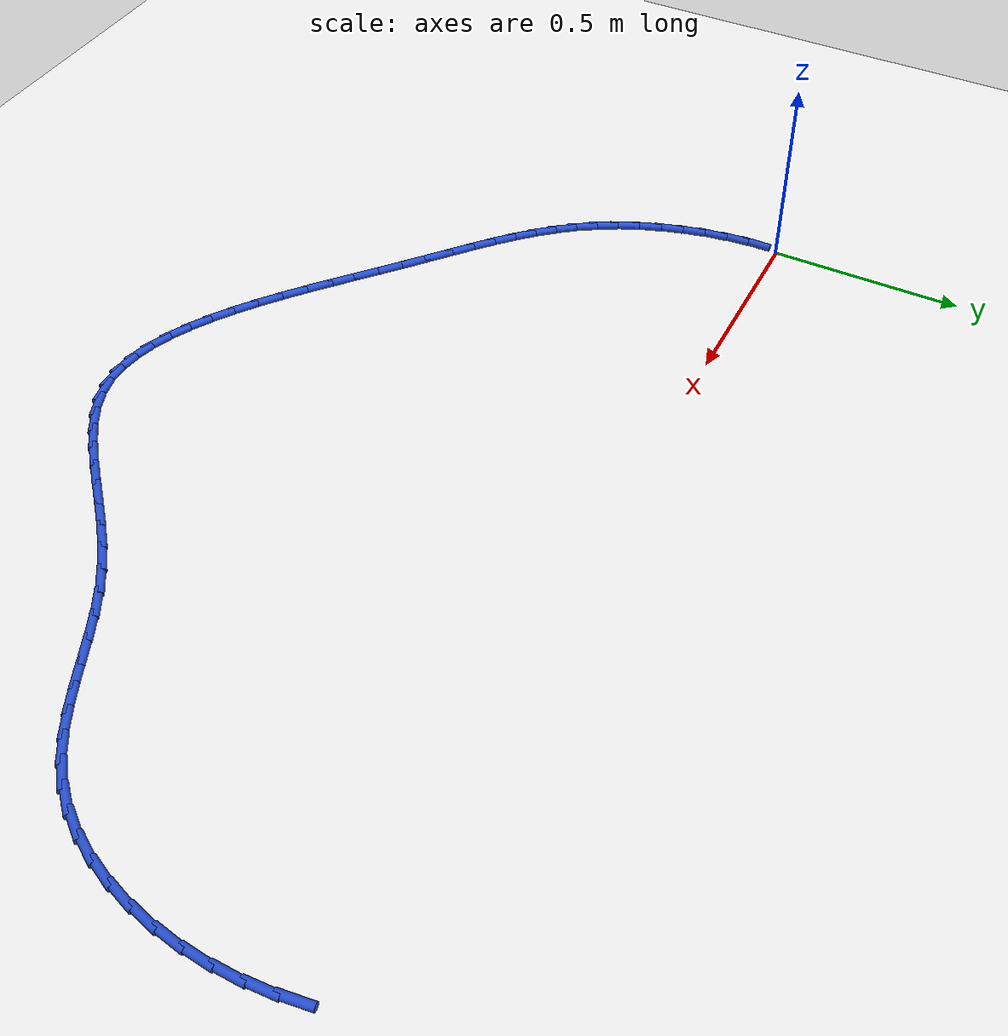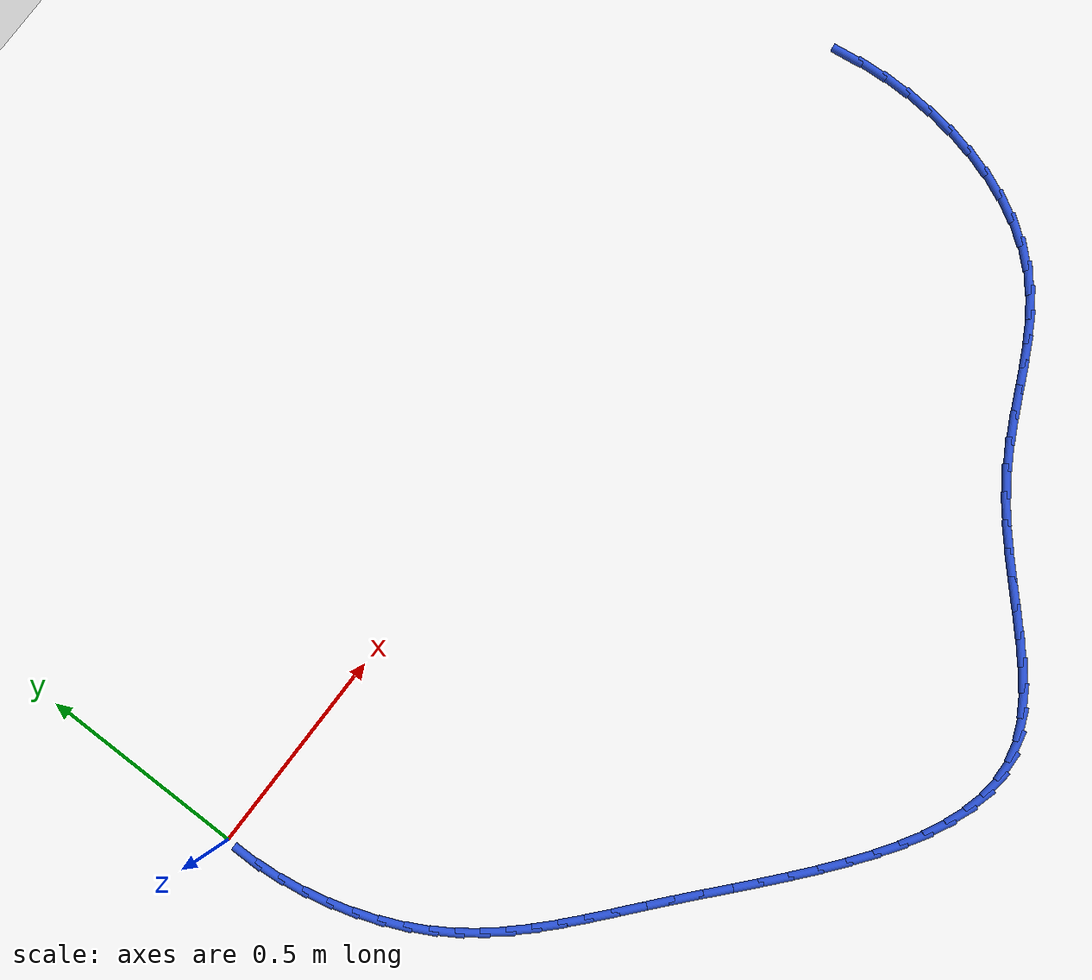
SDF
<sdf version="1.6">
 <world name="default">
  <model name="ground_plane">
   <static>1</static>
   <link name="link">
    <collision name="collision">
     <geometry><plane><normal>0 0 1</normal><size>100 100</size></plane></geometry>
     <surface><friction><ode><mu>100</mu><mu2>50</mu2></ode></friction></surface>
    </collision>
    <visual name="visual">
     <cast_shadows>0</cast_shadows>
     <geometry><plane><normal>0 0 1</normal><size>100 100</size></plane></geometry>
     <material>
      <script><uri>file://media/materials/scripts/gazebo.material</uri><name>Gazebo/WhiteGlow</name></script>
     </material>
    </visual>
   </link>
  </model>
  <model name="line">
   <link name="link_59">
    <pose>2.3085530691798746 -0.018197853099066557 0.01 0 1.57 -1.4325129582459295</pose>
    <collision name="collision">
     <geometry><cylinder><radius>0.01</radius><length>0.08</length></cylinder></geometry>
    </collision>
    <visual name="visual">
     <material>
      <script><name>Gazebo/Blue</name><uri>file://media/materials/scripts/gazebo.material</uri></script>
     </material>
     <geometry><cylinder><radius>0.01</radius><length>0.08</length></cylinder></geometry>
    </visual>
   </link>
   <link name="link_60">
    <pose>2.31756860821681 -0.08297787560808702 0.01 0 1.57 -1.5082387716069459</pose>
    <collision name="collision">
     <geometry><cylinder><radius>0.01</radius><length>0.08</length></cylinder></geometry>
    </collision>
    <visual name="visual">
     <material>
      <script><name>Gazebo/Blue</name><uri>file://media/materials/scripts/gazebo.material</uri></script>
     </material>
     <geometry><cylinder><radius>0.01</radius><length>0.08</length></cylinder></geometry>
    </visual>
   </link>
   <link name="link_61">
    <pose>2.32169380316041 -0.14883422632140297 0.01 0 1.57 1.559388871739443</pose>
    <collision name="collision">
     <geometry><cylinder><radius>0.01</radius><length>0.08</length></cylinder></geometry>
    </collision>
    <visual name="visual">
     <material>
      <script><name>Gazebo/Blue</name><uri>file://media/materials/scripts/gazebo.material</uri></script>
     </material>
     <geometry><cylinder><radius>0.01</radius><length>0.08</length></cylinder></geometry>
    </visual>
   </link>
   <link name="link_62">
    <pose>2.320938676465554 -0.21502724974461843 0.01 0 1.57 1.4854980649897156</pose>
    <collision name="collision">
     <geometry><cylinder><radius>0.01</radius><length>0.08</length></cylinder></geometry>
    </collision>
    <visual name="visual">
     <material>
      <script><name>Gazebo/Blue</name><uri>file://media/materials/scripts/gazebo.material</uri></script>
     </material>
     <geometry><cylinder><radius>0.01</radius><length>0.08</length></cylinder></geometry>
    </visual>
   </link>
   <link name="link_63">
    <pose>2.3153132505871246 -0.2808172903833375 0.01 0 1.57 1.4099983165330312</pose>
    <collision name="collision">
     <geometry><cylinder><radius>0.01</radius><length>0.08</length></cylinder></geometry>
    </collision>
    <visual name="visual">
     <material>
      <script><name>Gazebo/Blue</name><uri>file://media/materials/scripts/gazebo.material</uri></script>
     </material>
     <geometry><cylinder><radius>0.01</radius><length>0.08</length></cylinder></geometry>
    </visual>
   </link>
   <link name="link_64">
    <pose>2.3048275479800036 -0.345464692743162 0.01 0 1.57 1.3311528244453497</pose>
    <collision name="collision">
     <geometry><cylinder><radius>0.01</radius><length>0.08</length></cylinder></geometry>
    </collision>
    <visual name="visual">
     <material>
      <script><name>Gazebo/Blue</name><uri>file://media/materials/scripts/gazebo.material</uri></script>
     </material>
     <geometry><cylinder><radius>0.01</radius><length>0.08</length></cylinder></geometry>
    </visual>
   </link>
   <link name="link_65">
    <pose>2.2894915910990714 -0.4082298013296962 0.01 0 1.57 1.247124558940154</pose>
    <collision name="collision">
     <geometry><cylinder><radius>0.01</radius><length>0.08</length></cylinder></geometry>
    </collision>
    <visual name="visual">
     <material>
      <script><name>Gazebo/Blue</name><uri>file://media/materials/scripts/gazebo.material</uri></script>
     </material>
     <geometry><cylinder><radius>0.01</radius><length>0.08</length></cylinder></geometry>
    </visual>
   </link>
   <link name="link_66">
    <pose>2.2693154023992093 -0.4683729606485444 0.01 0 1.57 1.1559573098858067</pose>
    <collision name="collision">
     <geometry><cylinder><radius>0.01</radius><length>0.08</length></cylinder></geometry>
    </collision>
    <visual name="visual">
     <material>
      <script><name>Gazebo/Blue</name><uri>file://media/materials/scripts/gazebo.material</uri></script>
     </material>
     <geometry><cylinder><radius>0.01</radius><length>0.08</length></cylinder></geometry>
    </visual>
   </link>
   <link name="link_67">
    <pose>2.2443090043353 -0.5251545152053082 0.01 0 1.57 1.0556149688207166</pose>
    <collision name="collision">
     <geometry><cylinder><radius>0.01</radius><length>0.08</length></cylinder></geometry>
    </collision>
    <visual name="visual">
     <material>
      <script><name>Gazebo/Blue</name><uri>file://media/materials/scripts/gazebo.material</uri></script>
     </material>
     <geometry><cylinder><radius>0.01</radius><length>0.08</length></cylinder></geometry>
    </visual>
   </link>
   <link name="link_68">
    <pose>2.214482419362223 -0.5778348095055919 0.01 0 1.57 0.9441296610300561</pose>
    <collision name="collision">
     <geometry><cylinder><radius>0.01</radius><length>0.08</length></cylinder></geometry>
    </collision>
    <visual name="visual">
     <material>
      <script><name>Gazebo/Blue</name><uri>file://media/materials/scripts/gazebo.material</uri></script>
     </material>
     <geometry><cylinder><radius>0.01</radius><length>0.08</length></cylinder></geometry>
    </visual>
   </link>
   <link name="link_69">
    <pose>2.1798456699348607 -0.625674188054999 0.01 0 1.57 0.8199703586848631</pose>
    <collision name="collision">
     <geometry><cylinder><radius>0.01</radius><length>0.08</length></cylinder></geometry>
    </collision>
    <visual name="visual">
     <material>
      <script><name>Gazebo/Blue</name><uri>file://media/materials/scripts/gazebo.material</uri></script>
     </material>
     <geometry><cylinder><radius>0.01</radius><length>0.08</length></cylinder></geometry>
    </visual>
   </link>
   <link name="link_70">
    <pose>2.1404098086277026 -0.6679356303318432 0.01 0 1.57 0.6929490108734963</pose>
    <collision name="collision">
     <geometry><cylinder><radius>0.01</radius><length>0.08</length></cylinder></geometry>
    </collision>
    <visual name="visual">
     <material>
      <script><name>Gazebo/Blue</name><uri>file://media/materials/scripts/gazebo.material</uri></script>
     </material>
     <geometry><cylinder><radius>0.01</radius><length>0.08</length></cylinder></geometry>
    </visual>
   </link>
   <link name="link_71">
    <pose>2.0964140016598165 -0.7044656142965366 0.01 0 1.57 0.5893163092328777</pose>
    <collision name="collision">
     <geometry><cylinder><radius>0.01</radius><length>0.08</length></cylinder></geometry>
    </collision>
    <visual name="visual">
     <material>
      <script><name>Gazebo/Blue</name><uri>file://media/materials/scripts/gazebo.material</uri></script>
     </material>
     <geometry><cylinder><radius>0.01</radius><length>0.08</length></cylinder></geometry>
    </visual>
   </link>
   <link name="link_72">
    <pose>2.048611229422789 -0.7364249180264506 0.01 0 1.57 0.5148061069181925</pose>
    <collision name="collision">
     <geometry><cylinder><radius>0.01</radius><length>0.08</length></cylinder></geometry>
    </collision>
    <visual name="visual">
     <material>
      <script><name>Gazebo/Blue</name><uri>file://media/materials/scripts/gazebo.material</uri></script>
     </material>
     <geometry><cylinder><radius>0.01</radius><length>0.08</length></cylinder></geometry>
    </visual>
   </link>
   <link name="link_73">
    <pose>1.9978247546290706 -0.765154096778092 0.01 0 1.57 0.4691646512867262</pose>
    <collision name="collision">
     <geometry><cylinder><radius>0.01</radius><length>0.08</length></cylinder></geometry>
    </collision>
    <visual name="visual">
     <material>
      <script><name>Gazebo/Blue</name><uri>file://media/materials/scripts/gazebo.material</uri></script>
     </material>
     <geometry><cylinder><radius>0.01</radius><length>0.08</length></cylinder></geometry>
    </visual>
   </link>
   <link name="link_74">
    <pose>1.9448778399911133 -0.7919937058079679 0.01 0 1.57 0.45102097716771533</pose>
    <collision name="collision">
     <geometry><cylinder><radius>0.01</radius><length>0.08</length></cylinder></geometry>
    </collision>
    <visual name="visual">
     <material>
      <script><name>Gazebo/Blue</name><uri>file://media/materials/scripts/gazebo.material</uri></script>
     </material>
     <geometry><cylinder><radius>0.01</radius><length>0.08</length></cylinder></geometry>
    </visual>
   </link>
   <link name="link_75">
    <pose>1.8905937482213728 -0.8182843003725856 0.01 0 1.57 0.4590109428888501</pose>
    <collision name="collision">
     <geometry><cylinder><radius>0.01</radius><length>0.08</length></cylinder></geometry>
    </collision>
    <visual name="visual">
     <material>
      <script><name>Gazebo/Blue</name><uri>file://media/materials/scripts/gazebo.material</uri></script>
     </material>
     <geometry><cylinder><radius>0.01</radius><length>0.08</length></cylinder></geometry>
    </visual>
   </link>
   <link name="link_76">
    <pose>1.8357957420323 -0.8453664357284519 0.01 0 1.57 0.4921496272514179</pose>
    <collision name="collision">
     <geometry><cylinder><radius>0.01</radius><length>0.08</length></cylinder></geometry>
    </collision>
    <visual name="visual">
     <material>
      <script><name>Gazebo/Blue</name><uri>file://media/materials/scripts/gazebo.material</uri></script>
     </material>
     <geometry><cylinder><radius>0.01</radius><length>0.08</length></cylinder></geometry>
    </visual>
   </link>
   <link name="link_77">
    <pose>1.7813070841363483 -0.8745806671320746 0.01 0 1.57 0.5496459261136187</pose>
    <collision name="collision">
     <geometry><cylinder><radius>0.01</radius><length>0.08</length></cylinder></geometry>
    </collision>
    <visual name="visual">
     <material>
      <script><name>Gazebo/Blue</name><uri>file://media/materials/scripts/gazebo.material</uri></script>
     </material>
     <geometry><cylinder><radius>0.01</radius><length>0.08</length></cylinder></geometry>
    </visual>
   </link>
   <link name="link_78">
    <pose>1.7279510372459699 -0.9072675498399607 0.01 0 1.57 0.6260661024691514</pose>
    <collision name="collision">
     <geometry><cylinder><radius>0.01</radius><length>0.08</length></cylinder></geometry>
    </collision>
    <visual name="visual">
     <material>
      <script><name>Gazebo/Blue</name><uri>file://media/materials/scripts/gazebo.material</uri></script>
     </material>
     <geometry><cylinder><radius>0.01</radius><length>0.08</length></cylinder></geometry>
    </visual>
   </link>
   <link name="link_79">
    <pose>1.6764448152576803 -0.9445120461463333 0.01 0 1.57 0.6913496412463874</pose>
    <collision name="collision">
     <geometry><cylinder><radius>0.01</radius><length>0.08</length></cylinder></geometry>
    </collision>
    <visual name="visual">
     <material>
      <script><name>Gazebo/Blue</name><uri>file://media/materials/scripts/gazebo.material</uri></script>
     </material>
     <geometry><cylinder><radius>0.01</radius><length>0.08</length></cylinder></geometry>
    </visual>
   </link>
   <link name="link_80">
    <pose>1.6267691238588469 -0.9856240271927469 0.01 0 1.57 0.7348409474012493</pose>
    <collision name="collision">
     <geometry><cylinder><radius>0.01</radius><length>0.08</length></cylinder></geometry>
    </collision>
    <visual name="visual">
     <material>
      <script><name>Gazebo/Blue</name><uri>file://media/materials/scripts/gazebo.material</uri></script>
     </material>
     <geometry><cylinder><radius>0.01</radius><length>0.08</length></cylinder></geometry>
    </visual>
   </link>
   <link name="link_81">
    <pose>1.578592189876914 -1.0291602449392572 0.01 0 1.57 0.7581272105958394</pose>
    <collision name="collision">
     <geometry><cylinder><radius>0.01</radius><length>0.08</length></cylinder></geometry>
    </collision>
    <visual name="visual">
     <material>
      <script><name>Gazebo/Blue</name><uri>file://media/materials/scripts/gazebo.material</uri></script>
     </material>
     <geometry><cylinder><radius>0.01</radius><length>0.08</length></cylinder></geometry>
    </visual>
   </link>
   <link name="link_82">
    <pose>1.531581106819206 -1.0736747198807381 0.01 0 1.57 0.7617795186309007</pose>
    <collision name="collision">
     <geometry><cylinder><radius>0.01</radius><length>0.08</length></cylinder></geometry>
    </collision>
    <visual name="visual">
     <material>
      <script><name>Gazebo/Blue</name><uri>file://media/materials/scripts/gazebo.material</uri></script>
     </material>
     <geometry><cylinder><radius>0.01</radius><length>0.08</length></cylinder></geometry>
    </visual>
   </link>
   <link name="link_83">
    <pose>1.4854029681930396 -1.117721472512062 0.01 0 1.57 0.7450487802561345</pose>
    <collision name="collision">
     <geometry><cylinder><radius>0.01</radius><length>0.08</length></cylinder></geometry>
    </collision>
    <visual name="visual">
     <material>
      <script><name>Gazebo/Blue</name><uri>file://media/materials/scripts/gazebo.material</uri></script>
     </material>
     <geometry><cylinder><radius>0.01</radius><length>0.08</length></cylinder></geometry>
    </visual>
   </link>
   <link name="link_84">
    <pose>1.4397248675057368 -1.1598545233281026 0.01 0 1.57 0.705628860900903</pose>
    <collision name="collision">
     <geometry><cylinder><radius>0.01</radius><length>0.08</length></cylinder></geometry>
    </collision>
    <visual name="visual">
     <material>
      <script><name>Gazebo/Blue</name><uri>file://media/materials/scripts/gazebo.material</uri></script>
     </material>
     <geometry><cylinder><radius>0.01</radius><length>0.08</length></cylinder></geometry>
    </visual>
   </link>
   <link name="link_85">
    <pose>1.3942138982646166 -1.1986278928237335 0.01 0 1.57 0.639427494552466</pose>
    <collision name="collision">
     <geometry><cylinder><radius>0.01</radius><length>0.08</length></cylinder></geometry>
    </collision>
    <visual name="visual">
     <material>
      <script><name>Gazebo/Blue</name><uri>file://media/materials/scripts/gazebo.material</uri></script>
     </material>
     <geometry><cylinder><radius>0.01</radius><length>0.08</length></cylinder></geometry>
    </visual>
   </link>
   <link name="link_86">
    <pose>1.3485371539770012 -1.2325956014938275 0.01 0 1.57 0.5405916654125588</pose>
    <collision name="collision">
     <geometry><cylinder><radius>0.01</radius><length>0.08</length></cylinder></geometry>
    </collision>
    <visual name="visual">
     <material>
      <script><name>Gazebo/Blue</name><uri>file://media/materials/scripts/gazebo.material</uri></script>
     </material>
     <geometry><cylinder><radius>0.01</radius><length>0.08</length></cylinder></geometry>
    </visual>
   </link>
   <link name="link_87">
    <pose>1.3023617281502087 -1.2603116698332575 0.01 0 1.57 0.40259959840197834</pose>
    <collision name="collision">
     <geometry><cylinder><radius>0.01</radius><length>0.08</length></cylinder></geometry>
    </collision>
    <visual name="visual">
     <material>
      <script><name>Gazebo/Blue</name><uri>file://media/materials/scripts/gazebo.material</uri></script>
     </material>
     <geometry><cylinder><radius>0.01</radius><length>0.08</length></cylinder></geometry>
    </visual>
   </link>
   <link name="link_88">
    <pose>1.2553547142915604 -1.2803301183368974 0.01 0 1.57 0.2236179323660584</pose>
    <collision name="collision">
     <geometry><cylinder><radius>0.01</radius><length>0.08</length></cylinder></geometry>
    </collision>
    <visual name="visual">
     <material>
      <script><name>Gazebo/Blue</name><uri>file://media/materials/scripts/gazebo.material</uri></script>
     </material>
     <geometry><cylinder><radius>0.01</radius><length>0.08</length></cylinder></geometry>
    </visual>
   </link>
   <link name="link_89">
    <pose>1.2071999576852048 -1.2912815387404384 0.01 0 1.57 0.03489906823372021</pose>
    <collision name="collision">
     <geometry><cylinder><radius>0.01</radius><length>0.08</length></cylinder></geometry>
    </collision>
    <visual name="visual">
     <material>
      <script><name>Gazebo/Blue</name><uri>file://media/materials/scripts/gazebo.material</uri></script>
     </material>
     <geometry><cylinder><radius>0.01</radius><length>0.08</length></cylinder></geometry>
    </visual>
   </link>
   <link name="link_90">
    <pose>1.1578456121020544 -1.293004659026608 0.01 0 1.57 -0.13224138830765714</pose>
    <collision name="collision">
     <geometry><cylinder><radius>0.01</radius><length>0.08</length></cylinder></geometry>
    </collision>
    <visual name="visual">
     <material>
      <script><name>Gazebo/Blue</name><uri>file://media/materials/scripts/gazebo.material</uri></script>
     </material>
     <geometry><cylinder><radius>0.01</radius><length>0.08</length></cylinder></geometry>
    </visual>
   </link>
   <link name="link_91">
    <pose>1.107450513107531 -1.2863012194357433 0.01 0 1.57 -0.27202415700974625</pose>
    <collision name="collision">
     <geometry><cylinder><radius>0.01</radius><length>0.08</length></cylinder></geometry>
    </collision>
    <visual name="visual">
     <material>
      <script><name>Gazebo/Blue</name><uri>file://media/materials/scripts/gazebo.material</uri></script>
     </material>
     <geometry><cylinder><radius>0.01</radius><length>0.08</length></cylinder></geometry>
    </visual>
   </link>
   <link name="link_92">
    <pose>1.056179349514603 -1.2719997150075066 0.01 0 1.57 -0.38510912583992796</pose>
    <collision name="collision">
     <geometry><cylinder><radius>0.01</radius><length>0.08</length></cylinder></geometry>
    </collision>
    <visual name="visual">
     <material>
      <script><name>Gazebo/Blue</name><uri>file://media/materials/scripts/gazebo.material</uri></script>
     </material>
     <geometry><cylinder><radius>0.01</radius><length>0.08</length></cylinder></geometry>
    </visual>
   </link>
   <link name="link_93">
    <pose>1.00419681013624 -1.250928640781563 0.01 0 1.57 -0.4749673708518024</pose>
    <collision name="collision">
     <geometry><cylinder><radius>0.01</radius><length>0.08</length></cylinder></geometry>
    </collision>
    <visual name="visual">
     <material>
      <script><name>Gazebo/Blue</name><uri>file://media/materials/scripts/gazebo.material</uri></script>
     </material>
     <geometry><cylinder><radius>0.01</radius><length>0.08</length></cylinder></geometry>
    </visual>
   </link>
   <link name="link_94">
    <pose>0.9516675837854114 -1.2239164917975756 0.01 0 1.57 -0.5456558372078044</pose>
    <collision name="collision">
     <geometry><cylinder><radius>0.01</radius><length>0.08</length></cylinder></geometry>
    </collision>
    <visual name="visual">
     <material>
      <script><name>Gazebo/Blue</name><uri>file://media/materials/scripts/gazebo.material</uri></script>
     </material>
     <geometry><cylinder><radius>0.01</radius><length>0.08</length></cylinder></geometry>
    </visual>
   </link>
   <link name="link_95">
    <pose>0.8987563592750863 -1.1917917630952084 0.01 0 1.57 -0.6007897237265907</pose>
    <collision name="collision">
     <geometry><cylinder><radius>0.01</radius><length>0.08</length></cylinder></geometry>
    </collision>
    <visual name="visual">
     <material>
      <script><name>Gazebo/Blue</name><uri>file://media/materials/scripts/gazebo.material</uri></script>
     </material>
     <geometry><cylinder><radius>0.01</radius><length>0.08</length></cylinder></geometry>
    </visual>
   </link>
   <link name="link_96">
    <pose>0.8456278254182332 -1.1553829497141246 0.01 0 1.57 -0.6432427684879978</pose>
    <collision name="collision">
     <geometry><cylinder><radius>0.01</radius><length>0.08</length></cylinder></geometry>
    </collision>
    <visual name="visual">
     <material>
      <script><name>Gazebo/Blue</name><uri>file://media/materials/scripts/gazebo.material</uri></script>
     </material>
     <geometry><cylinder><radius>0.01</radius><length>0.08</length></cylinder></geometry>
    </visual>
   </link>
   <link name="link_97">
    <pose>0.7924466710278222 -1.1155185466939892 0.01 0 1.57 -0.6751570664840474</pose>
    <collision name="collision">
     <geometry><cylinder><radius>0.01</radius><length>0.08</length></cylinder></geometry>
    </collision>
    <visual name="visual">
     <material>
      <script><name>Gazebo/Blue</name><uri>file://media/materials/scripts/gazebo.material</uri></script>
     </material>
     <geometry><cylinder><radius>0.01</radius><length>0.08</length></cylinder></geometry>
    </visual>
   </link>
   <link name="link_98">
    <pose>0.7393775849168218 -1.0730270490744653 0.01 0 1.57 -0.6980435841906621</pose>
    <collision name="collision">
     <geometry><cylinder><radius>0.01</radius><length>0.08</length></cylinder></geometry>
    </collision>
    <visual name="visual">
     <material>
      <script><name>Gazebo/Blue</name><uri>file://media/materials/scripts/gazebo.material</uri></script>
     </material>
     <geometry><cylinder><radius>0.01</radius><length>0.08</length></cylinder></geometry>
    </visual>
   </link>
   <link name="link_99">
    <pose>0.6865852558982015 -1.028736951895217 0.01 0 1.57 -0.7128833611063683</pose>
    <collision name="collision">
     <geometry><cylinder><radius>0.01</radius><length>0.08</length></cylinder></geometry>
    </collision>
    <visual name="visual">
     <material>
      <script><name>Gazebo/Blue</name><uri>file://media/materials/scripts/gazebo.material</uri></script>
     </material>
     <geometry><cylinder><radius>0.01</radius><length>0.08</length></cylinder></geometry>
    </visual>
   </link>
   <link name="link_100">
    <pose>0.6342343727849293 -0.9834767501959069 0.01 0 1.57 -0.7201982562291572</pose>
    <collision name="collision">
     <geometry><cylinder><radius>0.01</radius><length>0.08</length></cylinder></geometry>
    </collision>
    <visual name="visual">
     <material>
      <script><name>Gazebo/Blue</name><uri>file://media/materials/scripts/gazebo.material</uri></script>
     </material>
     <geometry><cylinder><radius>0.01</radius><length>0.08</length></cylinder></geometry>
    </visual>
   </link>
   <link name="link_101">
    <pose>0.582489624389976 -0.9380749390162003 0.01 0 1.57 -0.7200812976303064</pose>
    <collision name="collision">
     <geometry><cylinder><radius>0.01</radius><length>0.08</length></cylinder></geometry>
    </collision>
    <visual name="visual">
     <material>
      <script><name>Gazebo/Blue</name><uri>file://media/materials/scripts/gazebo.material</uri></script>
     </material>
     <geometry><cylinder><radius>0.01</radius><length>0.08</length></cylinder></geometry>
    </visual>
   </link>
   <link name="link_102">
    <pose>0.5315156995263098 -0.8933600133957605 0.01 0 1.57 -0.7123333261268202</pose>
    <collision name="collision">
     <geometry><cylinder><radius>0.01</radius><length>0.08</length></cylinder></geometry>
    </collision>
    <visual name="visual">
     <material>
      <script><name>Gazebo/Blue</name><uri>file://media/materials/scripts/gazebo.material</uri></script>
     </material>
     <geometry><cylinder><radius>0.01</radius><length>0.08</length></cylinder></geometry>
    </visual>
   </link>
   <link name="link_103">
    <pose>0.48147810470230135 -0.8501478472877905 0.01 0 1.57 -0.7034331115736464</pose>
    <collision name="collision">
     <geometry><cylinder><radius>0.01</radius><length>0.08</length></cylinder></geometry>
    </collision>
    <visual name="visual">
     <material>
      <script><name>Gazebo/Blue</name><uri>file://media/materials/scripts/gazebo.material</uri></script>
     </material>
     <geometry><cylinder><radius>0.01</radius><length>0.08</length></cylinder></geometry>
    </visual>
   </link>
   <link name="link_104">
    <pose>0.4325799628460149 -0.8086737071422507 0.01 0 1.57 -0.7036882644246982</pose>
    <collision name="collision">
     <geometry><cylinder><radius>0.01</radius><length>0.08</length></cylinder></geometry>
    </collision>
    <visual name="visual">
     <material>
      <script><name>Gazebo/Blue</name><uri>file://media/materials/scripts/gazebo.material</uri></script>
     </material>
     <geometry><cylinder><radius>0.01</radius><length>0.08</length></cylinder></geometry>
    </visual>
   </link>
   <link name="link_105">
    <pose>0.38507692973208135 -0.7683620176243317 0.01 0 1.57 -0.7147112809598948</pose>
    <collision name="collision">
     <geometry><cylinder><radius>0.01</radius><length>0.08</length></cylinder></geometry>
    </collision>
    <visual name="visual">
     <material>
      <script><name>Gazebo/Blue</name><uri>file://media/materials/scripts/gazebo.material</uri></script>
     </material>
     <geometry><cylinder><radius>0.01</radius><length>0.08</length></cylinder></geometry>
    </visual>
   </link>
   <link name="link_106">
    <pose>0.33922856683332386 -0.7285769191484799 0.01 0 1.57 -0.7372445954450105</pose>
    <collision name="collision">
     <geometry><cylinder><radius>0.01</radius><length>0.08</length></cylinder></geometry>
    </collision>
    <visual name="visual">
     <material>
      <script><name>Gazebo/Blue</name><uri>file://media/materials/scripts/gazebo.material</uri></script>
     </material>
     <geometry><cylinder><radius>0.01</radius><length>0.08</length></cylinder></geometry>
    </visual>
   </link>
   <link name="link_107">
    <pose>0.295294435622566 -0.6886825521291421 0.01 0 1.57 -0.7717965123173133</pose>
    <collision name="collision">
     <geometry><cylinder><radius>0.01</radius><length>0.08</length></cylinder></geometry>
    </collision>
    <visual name="visual">
     <material>
      <script><name>Gazebo/Blue</name><uri>file://media/materials/scripts/gazebo.material</uri></script>
     </material>
     <geometry><cylinder><radius>0.01</radius><length>0.08</length></cylinder></geometry>
    </visual>
   </link>
   <link name="link_108">
    <pose>0.25353409757263107 -0.6480430569807653 0.01 0 1.57 -0.8184971139288701</pose>
    <collision name="collision">
     <geometry><cylinder><radius>0.01</radius><length>0.08</length></cylinder></geometry>
    </collision>
    <visual name="visual">
     <material>
      <script><name>Gazebo/Blue</name><uri>file://media/materials/scripts/gazebo.material</uri></script>
     </material>
     <geometry><cylinder><radius>0.01</radius><length>0.08</length></cylinder></geometry>
    </visual>
   </link>
   <link name="link_109">
    <pose>0.21420711415634386 -0.6060225741177974 0.01 0 1.57 -0.8769124353068941</pose>
    <collision name="collision">
     <geometry><cylinder><radius>0.01</radius><length>0.08</length></cylinder></geometry>
    </collision>
    <visual name="visual">
     <material>
      <script><name>Gazebo/Blue</name><uri>file://media/materials/scripts/gazebo.material</uri></script>
     </material>
     <geometry><cylinder><radius>0.01</radius><length>0.08</length></cylinder></geometry>
    </visual>
   </link>
   <link name="link_110">
    <pose>0.17757304684652747 -0.5619852439546846 0.01 0 1.57 -0.9458603569334335</pose>
    <collision name="collision">
     <geometry><cylinder><radius>0.01</radius><length>0.08</length></cylinder></geometry>
    </collision>
    <visual name="visual">
     <material>
      <script><name>Gazebo/Blue</name><uri>file://media/materials/scripts/gazebo.material</uri></script>
     </material>
     <geometry><cylinder><radius>0.01</radius><length>0.08</length></cylinder></geometry>
    </visual>
   </link>
   <link name="link_111">
    <pose>0.1438914571160057 -0.5152952069058745 0.01 0 1.57 -1.0226244812458234</pose>
    <collision name="collision">
     <geometry><cylinder><radius>0.01</radius><length>0.08</length></cylinder></geometry>
    </collision>
    <visual name="visual">
     <material>
      <script><name>Gazebo/Blue</name><uri>file://media/materials/scripts/gazebo.material</uri></script>
     </material>
     <geometry><cylinder><radius>0.01</radius><length>0.08</length></cylinder></geometry>
    </visual>
   </link>
   <link name="link_112">
    <pose>0.1134137954527001 -0.46538032415309427 0.01 0 1.57 -1.0981452954271351</pose>
    <collision name="collision">
     <geometry><cylinder><radius>0.01</radius><length>0.08</length></cylinder></geometry>
    </collision>
    <visual name="visual">
     <material>
      <script><name>Gazebo/Blue</name><uri>file://media/materials/scripts/gazebo.material</uri></script>
     </material>
     <geometry><cylinder><radius>0.01</radius><length>0.08</length></cylinder></geometry>
    </visual>
   </link>
   <link name="link_113">
    <pose>0.0863036311010249 -0.4123588613522363 0.01 0 1.57 -1.1687984005289245</pose>
    <collision name="collision">
     <geometry><cylinder><radius>0.01</radius><length>0.08</length></cylinder></geometry>
    </collision>
    <visual name="visual">
     <material>
      <script><name>Gazebo/Blue</name><uri>file://media/materials/scripts/gazebo.material</uri></script>
     </material>
     <geometry><cylinder><radius>0.01</radius><length>0.08</length></cylinder></geometry>
    </visual>
   </link>
   <link name="link_114">
    <pose>0.062670737667685 -0.35677170845854256 0.01 0 1.57 -1.235907725921899</pose>
    <collision name="collision">
     <geometry><cylinder><radius>0.01</radius><length>0.08</length></cylinder></geometry>
    </collision>
    <visual name="visual">
     <material>
      <script><name>Gazebo/Blue</name><uri>file://media/materials/scripts/gazebo.material</uri></script>
     </material>
     <geometry><cylinder><radius>0.01</radius><length>0.08</length></cylinder></geometry>
    </visual>
   </link>
   <link name="link_115">
    <pose>0.042624113967810726 -0.29916584227296183 0.01 0 1.57 -1.3007782779128982</pose>
    <collision name="collision">
     <geometry><cylinder><radius>0.01</radius><length>0.08</length></cylinder></geometry>
    </collision>
    <visual name="visual">
     <material>
      <script><name>Gazebo/Blue</name><uri>file://media/materials/scripts/gazebo.material</uri></script>
     </material>
     <geometry><cylinder><radius>0.01</radius><length>0.08</length></cylinder></geometry>
    </visual>
   </link>
   <link name="link_116">
    <pose>0.026272758816533234 -0.24008823959644512 0.01 0 1.57 -1.364656792865694</pose>
    <collision name="collision">
     <geometry><cylinder><radius>0.01</radius><length>0.08</length></cylinder></geometry>
    </collision>
    <visual name="visual">
     <material>
      <script><name>Gazebo/Blue</name><uri>file://media/materials/scripts/gazebo.material</uri></script>
     </material>
     <geometry><cylinder><radius>0.01</radius><length>0.08</length></cylinder></geometry>
    </visual>
   </link>
   <link name="link_117">
    <pose>0.013725671028982804 -0.1800858772299411 0.01 0 1.57 -1.428768025535445</pose>
    <collision name="collision">
     <geometry><cylinder><radius>0.01</radius><length>0.08</length></cylinder></geometry>
    </collision>
    <visual name="visual">
     <material>
      <script><name>Gazebo/Blue</name><uri>file://media/materials/scripts/gazebo.material</uri></script>
     </material>
     <geometry><cylinder><radius>0.01</radius><length>0.08</length></cylinder></geometry>
    </visual>
   </link>
   <link name="link_118">
    <pose>0.00509184942029006 -0.11970573197439946 0.01 0 1.57 -1.494355564049368</pose>
    <collision name="collision">
     <geometry><cylinder><radius>0.01</radius><length>0.08</length></cylinder></geometry>
    </collision>
    <visual name="visual">
     <material>
      <script><name>Gazebo/Blue</name><uri>file://media/materials/scripts/gazebo.material</uri></script>
     </material>
     <geometry><cylinder><radius>0.01</radius><length>0.08</length></cylinder></geometry>
    </visual>
   </link>
   <link name="link_119">
    <pose>0.00048029280558553947 -0.0594947806307687 0.01 0 1.57 -1.5627236460121503</pose>
    <collision name="collision">
     <geometry><cylinder><radius>0.01</radius><length>0.08</length></cylinder></geometry>
    </collision>
    <visual name="visual">
     <material>
      <script><name>Gazebo/Blue</name><uri>file://media/materials/scripts/gazebo.material</uri></script>
     </material>
     <geometry><cylinder><radius>0.01</radius><length>0.08</length></cylinder></geometry>
    </visual>
   </link>
  </model>
 </world>
</sdf>
